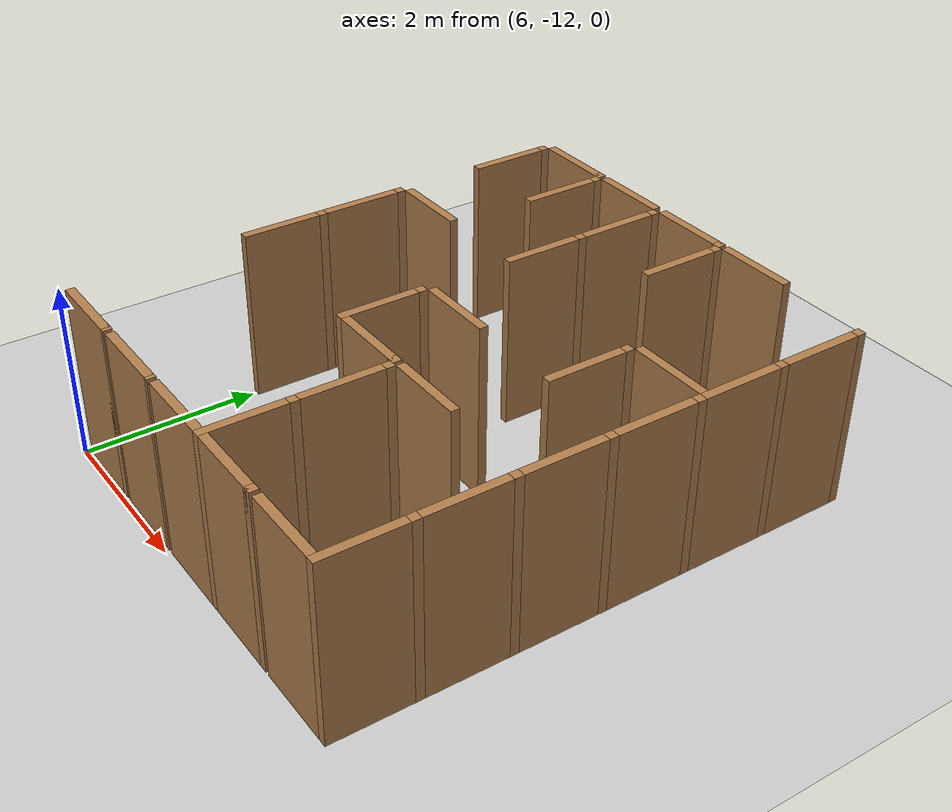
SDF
<sdf version="1.6">
 <world name="default">
  <include><uri>model://sun</uri></include>
  <model name="ground_plane">
   <static>true</static>
   <link name="link">
    <collision name="collision"><geometry><plane><size>12.0 12.0</size></plane></geometry></collision>
    <visual name="visual">
     <cast_shadows>false</cast_shadows>
     <geometry><plane><size>12.0 12.0</size></plane></geometry>
     <material>
      <script><uri>file://media/materials/scripts/gazebo.material</uri><name>Gazebo/Grey</name></script>
     </material>
    </visual>
   </link>
   <pose>6.0 -6.0 0 0 0 0</pose>
  </model>
  <model name="vwall_6_6">
   <pose>6.0 -6.5 1.0 0 0 0</pose>
   <link name="link">
    <collision name="collision"><geometry><box><size>0.1 0.9 2</size></box></geometry></collision>
    <visual name="visual">
     <geometry><box><size>0.1 0.9 2</size></box></geometry>
     <material>
      <script><uri>file://media/materials/scripts/gazebo.material</uri><name>Gazebo/Wood</name></script>
     </material>
    </visual>
   </link>
  </model>
  <model name="joint_6.0_-6.0">
   <pose>6.0 -6.0 1.0 0 0 0</pose>
   <link name="link">
    <collision name="collision"><geometry><box><size>0.1 0.1 2</size></box></geometry></collision>
    <visual name="visual">
     <geometry><box><size>0.1 0.1 2</size></box></geometry>
     <material>
      <script><uri>file://media/materials/scripts/gazebo.material</uri><name>Gazebo/Wood</name></script>
     </material>
    </visual>
   </link>
  </model>
  <model name="vwall_6_7">
   <pose>7.0 -6.5 1.0 0 0 0</pose>
   <link name="link">
    <collision name="collision"><geometry><box><size>0.1 0.9 2</size></box></geometry></collision>
    <visual name="visual">
     <geometry><box><size>0.1 0.9 2</size></box></geometry>
     <material>
      <script><uri>file://media/materials/scripts/gazebo.material</uri><name>Gazebo/Wood</name></script>
     </material>
    </visual>
   </link>
  </model>
  <model name="joint_7.0_-6.0">
   <pose>7.0 -6.0 1.0 0 0 0</pose>
   <link name="link">
    <collision name="collision"><geometry><box><size>0.1 0.1 2</size></box></geometry></collision>
    <visual name="visual">
     <geometry><box><size>0.1 0.1 2</size></box></geometry>
     <material>
      <script><uri>file://media/materials/scripts/gazebo.material</uri><name>Gazebo/Wood</name></script>
     </material>
    </visual>
   </link>
  </model>
  <model name="vwall_6_8">
   <pose>8.0 -6.5 1.0 0 0 0</pose>
   <link name="link">
    <collision name="collision"><geometry><box><size>0.1 0.9 2</size></box></geometry></collision>
    <visual name="visual">
     <geometry><box><size>0.1 0.9 2</size></box></geometry>
     <material>
      <script><uri>file://media/materials/scripts/gazebo.material</uri><name>Gazebo/Wood</name></script>
     </material>
    </visual>
   </link>
  </model>
  <model name="joint_8.0_-6.0">
   <pose>8.0 -6.0 1.0 0 0 0</pose>
   <link name="link">
    <collision name="collision"><geometry><box><size>0.1 0.1 2</size></box></geometry></collision>
    <visual name="visual">
     <geometry><box><size>0.1 0.1 2</size></box></geometry>
     <material>
      <script><uri>file://media/materials/scripts/gazebo.material</uri><name>Gazebo/Wood</name></script>
     </material>
    </visual>
   </link>
  </model>
  <model name="vwall_6_9">
   <pose>9.0 -6.5 1.0 0 0 0</pose>
   <link name="link">
    <collision name="collision"><geometry><box><size>0.1 0.9 2</size></box></geometry></collision>
    <visual name="visual">
     <geometry><box><size>0.1 0.9 2</size></box></geometry>
     <material>
      <script><uri>file://media/materials/scripts/gazebo.material</uri><name>Gazebo/Wood</name></script>
     </material>
    </visual>
   </link>
  </model>
  <model name="joint_9.0_-6.0">
   <pose>9.0 -6.0 1.0 0 0 0</pose>
   <link name="link">
    <collision name="collision"><geometry><box><size>0.1 0.1 2</size></box></geometry></collision>
    <visual name="visual">
     <geometry><box><size>0.1 0.1 2</size></box></geometry>
     <material>
      <script><uri>file://media/materials/scripts/gazebo.material</uri><name>Gazebo/Wood</name></script>
     </material>
    </visual>
   </link>
  </model>
  <model name="vwall_6_11">
   <pose>11.0 -6.5 1.0 0 0 0</pose>
   <link name="link">
    <collision name="collision"><geometry><box><size>0.1 0.9 2</size></box></geometry></collision>
    <visual name="visual">
     <geometry><box><size>0.1 0.9 2</size></box></geometry>
     <material>
      <script><uri>file://media/materials/scripts/gazebo.material</uri><name>Gazebo/Wood</name></script>
     </material>
    </visual>
   </link>
  </model>
  <model name="joint_11.0_-6.0">
   <pose>11.0 -6.0 1.0 0 0 0</pose>
   <link name="link">
    <collision name="collision"><geometry><box><size>0.1 0.1 2</size></box></geometry></collision>
    <visual name="visual">
     <geometry><box><size>0.1 0.1 2</size></box></geometry>
     <material>
      <script><uri>file://media/materials/scripts/gazebo.material</uri><name>Gazebo/Wood</name></script>
     </material>
    </visual>
   </link>
  </model>
  <model name="vwall_7_8">
   <pose>8.0 -7.5 1.0 0 0 0</pose>
   <link name="link">
    <collision name="collision"><geometry><box><size>0.1 0.9 2</size></box></geometry></collision>
    <visual name="visual">
     <geometry><box><size>0.1 0.9 2</size></box></geometry>
     <material>
      <script><uri>file://media/materials/scripts/gazebo.material</uri><name>Gazebo/Wood</name></script>
     </material>
    </visual>
   </link>
  </model>
  <model name="joint_8.0_-7.0">
   <pose>8.0 -7.0 1.0 0 0 0</pose>
   <link name="link">
    <collision name="collision"><geometry><box><size>0.1 0.1 2</size></box></geometry></collision>
    <visual name="visual">
     <geometry><box><size>0.1 0.1 2</size></box></geometry>
     <material>
      <script><uri>file://media/materials/scripts/gazebo.material</uri><name>Gazebo/Wood</name></script>
     </material>
    </visual>
   </link>
  </model>
  <model name="vwall_7_11">
   <pose>11.0 -7.5 1.0 0 0 0</pose>
   <link name="link">
    <collision name="collision"><geometry><box><size>0.1 0.9 2</size></box></geometry></collision>
    <visual name="visual">
     <geometry><box><size>0.1 0.9 2</size></box></geometry>
     <material>
      <script><uri>file://media/materials/scripts/gazebo.material</uri><name>Gazebo/Wood</name></script>
     </material>
    </visual>
   </link>
  </model>
  <model name="joint_11.0_-7.0">
   <pose>11.0 -7.0 1.0 0 0 0</pose>
   <link name="link">
    <collision name="collision"><geometry><box><size>0.1 0.1 2</size></box></geometry></collision>
    <visual name="visual">
     <geometry><box><size>0.1 0.1 2</size></box></geometry>
     <material>
      <script><uri>file://media/materials/scripts/gazebo.material</uri><name>Gazebo/Wood</name></script>
     </material>
    </visual>
   </link>
  </model>
  <model name="vwall_8_6">
   <pose>6.0 -8.5 1.0 0 0 0</pose>
   <link name="link">
    <collision name="collision"><geometry><box><size>0.1 0.9 2</size></box></geometry></collision>
    <visual name="visual">
     <geometry><box><size>0.1 0.9 2</size></box></geometry>
     <material>
      <script><uri>file://media/materials/scripts/gazebo.material</uri><name>Gazebo/Wood</name></script>
     </material>
    </visual>
   </link>
  </model>
  <model name="joint_6.0_-8.0">
   <pose>6.0 -8.0 1.0 0 0 0</pose>
   <link name="link">
    <collision name="collision"><geometry><box><size>0.1 0.1 2</size></box></geometry></collision>
    <visual name="visual">
     <geometry><box><size>0.1 0.1 2</size></box></geometry>
     <material>
      <script><uri>file://media/materials/scripts/gazebo.material</uri><name>Gazebo/Wood</name></script>
     </material>
    </visual>
   </link>
  </model>
  <model name="vwall_8_10">
   <pose>10.0 -8.5 1.0 0 0 0</pose>
   <link name="link">
    <collision name="collision"><geometry><box><size>0.1 0.9 2</size></box></geometry></collision>
    <visual name="visual">
     <geometry><box><size>0.1 0.9 2</size></box></geometry>
     <material>
      <script><uri>file://media/materials/scripts/gazebo.material</uri><name>Gazebo/Wood</name></script>
     </material>
    </visual>
   </link>
  </model>
  <model name="joint_10.0_-8.0">
   <pose>10.0 -8.0 1.0 0 0 0</pose>
   <link name="link">
    <collision name="collision"><geometry><box><size>0.1 0.1 2</size></box></geometry></collision>
    <visual name="visual">
     <geometry><box><size>0.1 0.1 2</size></box></geometry>
     <material>
      <script><uri>file://media/materials/scripts/gazebo.material</uri><name>Gazebo/Wood</name></script>
     </material>
    </visual>
   </link>
  </model>
  <model name="vwall_8_11">
   <pose>11.0 -8.5 1.0 0 0 0</pose>
   <link name="link">
    <collision name="collision"><geometry><box><size>0.1 0.9 2</size></box></geometry></collision>
    <visual name="visual">
     <geometry><box><size>0.1 0.9 2</size></box></geometry>
     <material>
      <script><uri>file://media/materials/scripts/gazebo.material</uri><name>Gazebo/Wood</name></script>
     </material>
    </visual>
   </link>
  </model>
  <model name="joint_11.0_-8.0">
   <pose>11.0 -8.0 1.0 0 0 0</pose>
   <link name="link">
    <collision name="collision"><geometry><box><size>0.1 0.1 2</size></box></geometry></collision>
    <visual name="visual">
     <geometry><box><size>0.1 0.1 2</size></box></geometry>
     <material>
      <script><uri>file://media/materials/scripts/gazebo.material</uri><name>Gazebo/Wood</name></script>
     </material>
    </visual>
   </link>
  </model>
  <model name="vwall_9_6">
   <pose>6.0 -9.5 1.0 0 0 0</pose>
   <link name="link">
    <collision name="collision"><geometry><box><size>0.1 0.9 2</size></box></geometry></collision>
    <visual name="visual">
     <geometry><box><size>0.1 0.9 2</size></box></geometry>
     <material>
      <script><uri>file://media/materials/scripts/gazebo.material</uri><name>Gazebo/Wood</name></script>
     </material>
    </visual>
   </link>
  </model>
  <model name="joint_6.0_-9.0">
   <pose>6.0 -9.0 1.0 0 0 0</pose>
   <link name="link">
    <collision name="collision"><geometry><box><size>0.1 0.1 2</size></box></geometry></collision>
    <visual name="visual">
     <geometry><box><size>0.1 0.1 2</size></box></geometry>
     <material>
      <script><uri>file://media/materials/scripts/gazebo.material</uri><name>Gazebo/Wood</name></script>
     </material>
    </visual>
   </link>
  </model>
  <model name="vwall_9_8">
   <pose>8.0 -9.5 1.0 0 0 0</pose>
   <link name="link">
    <collision name="collision"><geometry><box><size>0.1 0.9 2</size></box></geometry></collision>
    <visual name="visual">
     <geometry><box><size>0.1 0.9 2</size></box></geometry>
     <material>
      <script><uri>file://media/materials/scripts/gazebo.material</uri><name>Gazebo/Wood</name></script>
     </material>
    </visual>
   </link>
  </model>
  <model name="joint_8.0_-9.0">
   <pose>8.0 -9.0 1.0 0 0 0</pose>
   <link name="link">
    <collision name="collision"><geometry><box><size>0.1 0.1 2</size></box></geometry></collision>
    <visual name="visual">
     <geometry><box><size>0.1 0.1 2</size></box></geometry>
     <material>
      <script><uri>file://media/materials/scripts/gazebo.material</uri><name>Gazebo/Wood</name></script>
     </material>
    </visual>
   </link>
  </model>
  <model name="vwall_9_11">
   <pose>11.0 -9.5 1.0 0 0 0</pose>
   <link name="link">
    <collision name="collision"><geometry><box><size>0.1 0.9 2</size></box></geometry></collision>
    <visual name="visual">
     <geometry><box><size>0.1 0.9 2</size></box></geometry>
     <material>
      <script><uri>file://media/materials/scripts/gazebo.material</uri><name>Gazebo/Wood</name></script>
     </material>
    </visual>
   </link>
  </model>
  <model name="joint_11.0_-9.0">
   <pose>11.0 -9.0 1.0 0 0 0</pose>
   <link name="link">
    <collision name="collision"><geometry><box><size>0.1 0.1 2</size></box></geometry></collision>
    <visual name="visual">
     <geometry><box><size>0.1 0.1 2</size></box></geometry>
     <material>
      <script><uri>file://media/materials/scripts/gazebo.material</uri><name>Gazebo/Wood</name></script>
     </material>
    </visual>
   </link>
  </model>
  <model name="vwall_10_9">
   <pose>9.0 -10.5 1.0 0 0 0</pose>
   <link name="link">
    <collision name="collision"><geometry><box><size>0.1 0.9 2</size></box></geometry></collision>
    <visual name="visual">
     <geometry><box><size>0.1 0.9 2</size></box></geometry>
     <material>
      <script><uri>file://media/materials/scripts/gazebo.material</uri><name>Gazebo/Wood</name></script>
     </material>
    </visual>
   </link>
  </model>
  <model name="joint_9.0_-10.0">
   <pose>9.0 -10.0 1.0 0 0 0</pose>
   <link name="link">
    <collision name="collision"><geometry><box><size>0.1 0.1 2</size></box></geometry></collision>
    <visual name="visual">
     <geometry><box><size>0.1 0.1 2</size></box></geometry>
     <material>
      <script><uri>file://media/materials/scripts/gazebo.material</uri><name>Gazebo/Wood</name></script>
     </material>
    </visual>
   </link>
  </model>
  <model name="vwall_10_11">
   <pose>11.0 -10.5 1.0 0 0 0</pose>
   <link name="link">
    <collision name="collision"><geometry><box><size>0.1 0.9 2</size></box></geometry></collision>
    <visual name="visual">
     <geometry><box><size>0.1 0.9 2</size></box></geometry>
     <material>
      <script><uri>file://media/materials/scripts/gazebo.material</uri><name>Gazebo/Wood</name></script>
     </material>
    </visual>
   </link>
  </model>
  <model name="joint_11.0_-10.0">
   <pose>11.0 -10.0 1.0 0 0 0</pose>
   <link name="link">
    <collision name="collision"><geometry><box><size>0.1 0.1 2</size></box></geometry></collision>
    <visual name="visual">
     <geometry><box><size>0.1 0.1 2</size></box></geometry>
     <material>
      <script><uri>file://media/materials/scripts/gazebo.material</uri><name>Gazebo/Wood</name></script>
     </material>
    </visual>
   </link>
  </model>
  <model name="vwall_11_9">
   <pose>9.0 -11.5 1.0 0 0 0</pose>
   <link name="link">
    <collision name="collision"><geometry><box><size>0.1 0.9 2</size></box></geometry></collision>
    <visual name="visual">
     <geometry><box><size>0.1 0.9 2</size></box></geometry>
     <material>
      <script><uri>file://media/materials/scripts/gazebo.material</uri><name>Gazebo/Wood</name></script>
     </material>
    </visual>
   </link>
  </model>
  <model name="joint_9.0_-11.0">
   <pose>9.0 -11.0 1.0 0 0 0</pose>
   <link name="link">
    <collision name="collision"><geometry><box><size>0.1 0.1 2</size></box></geometry></collision>
    <visual name="visual">
     <geometry><box><size>0.1 0.1 2</size></box></geometry>
     <material>
      <script><uri>file://media/materials/scripts/gazebo.material</uri><name>Gazebo/Wood</name></script>
     </material>
    </visual>
   </link>
  </model>
  <model name="vwall_11_11">
   <pose>11.0 -11.5 1.0 0 0 0</pose>
   <link name="link">
    <collision name="collision"><geometry><box><size>0.1 0.9 2</size></box></geometry></collision>
    <visual name="visual">
     <geometry><box><size>0.1 0.9 2</size></box></geometry>
     <material>
      <script><uri>file://media/materials/scripts/gazebo.material</uri><name>Gazebo/Wood</name></script>
     </material>
    </visual>
   </link>
  </model>
  <model name="joint_11.0_-11.0">
   <pose>11.0 -11.0 1.0 0 0 0</pose>
   <link name="link">
    <collision name="collision"><geometry><box><size>0.1 0.1 2</size></box></geometry></collision>
    <visual name="visual">
     <geometry><box><size>0.1 0.1 2</size></box></geometry>
     <material>
      <script><uri>file://media/materials/scripts/gazebo.material</uri><name>Gazebo/Wood</name></script>
     </material>
    </visual>
   </link>
  </model>
  <model name="hwall_5_6">
   <pose>6.5 -5.9 1.0 0 0 0</pose>
   <link name="link">
    <collision name="collision"><geometry><box><size>0.9 0.1 2</size></box></geometry></collision>
    <visual name="visual">
     <geometry><box><size>0.9 0.1 2</size></box></geometry>
     <material>
      <script><uri>file://media/materials/scripts/gazebo.material</uri><name>Gazebo/Wood</name></script>
     </material>
    </visual>
   </link>
  </model>
  <model name="joint_6.95_-5.9">
   <pose>6.95 -5.9 1.0 0 0 0</pose>
   <link name="link">
    <collision name="collision"><geometry><box><size>0.1 0.1 2</size></box></geometry></collision>
    <visual name="visual">
     <geometry><box><size>0.1 0.1 2</size></box></geometry>
     <material>
      <script><uri>file://media/materials/scripts/gazebo.material</uri><name>Gazebo/Wood</name></script>
     </material>
    </visual>
   </link>
  </model>
  <model name="hwall_5_7">
   <pose>7.5 -5.9 1.0 0 0 0</pose>
   <link name="link">
    <collision name="collision"><geometry><box><size>0.9 0.1 2</size></box></geometry></collision>
    <visual name="visual">
     <geometry><box><size>0.9 0.1 2</size></box></geometry>
     <material>
      <script><uri>file://media/materials/scripts/gazebo.material</uri><name>Gazebo/Wood</name></script>
     </material>
    </visual>
   </link>
  </model>
  <model name="hwall_5_8">
   <pose>8.5 -5.9 1.0 0 0 0</pose>
   <link name="link">
    <collision name="collision"><geometry><box><size>0.9 0.1 2</size></box></geometry></collision>
    <visual name="visual">
     <geometry><box><size>0.9 0.1 2</size></box></geometry>
     <material>
      <script><uri>file://media/materials/scripts/gazebo.material</uri><name>Gazebo/Wood</name></script>
     </material>
    </visual>
   </link>
  </model>
  <model name="joint_8.95_-5.9">
   <pose>8.95 -5.9 1.0 0 0 0</pose>
   <link name="link">
    <collision name="collision"><geometry><box><size>0.1 0.1 2</size></box></geometry></collision>
    <visual name="visual">
     <geometry><box><size>0.1 0.1 2</size></box></geometry>
     <material>
      <script><uri>file://media/materials/scripts/gazebo.material</uri><name>Gazebo/Wood</name></script>
     </material>
    </visual>
   </link>
  </model>
  <model name="hwall_5_9">
   <pose>9.5 -5.9 1.0 0 0 0</pose>
   <link name="link">
    <collision name="collision"><geometry><box><size>0.9 0.1 2</size></box></geometry></collision>
    <visual name="visual">
     <geometry><box><size>0.9 0.1 2</size></box></geometry>
     <material>
      <script><uri>file://media/materials/scripts/gazebo.material</uri><name>Gazebo/Wood</name></script>
     </material>
    </visual>
   </link>
  </model>
  <model name="hwall_7_6">
   <pose>6.5 -7.9 1.0 0 0 0</pose>
   <link name="link">
    <collision name="collision"><geometry><box><size>0.9 0.1 2</size></box></geometry></collision>
    <visual name="visual">
     <geometry><box><size>0.9 0.1 2</size></box></geometry>
     <material>
      <script><uri>file://media/materials/scripts/gazebo.material</uri><name>Gazebo/Wood</name></script>
     </material>
    </visual>
   </link>
  </model>
  <model name="hwall_7_10">
   <pose>10.5 -7.9 1.0 0 0 0</pose>
   <link name="link">
    <collision name="collision"><geometry><box><size>0.9 0.1 2</size></box></geometry></collision>
    <visual name="visual">
     <geometry><box><size>0.9 0.1 2</size></box></geometry>
     <material>
      <script><uri>file://media/materials/scripts/gazebo.material</uri><name>Gazebo/Wood</name></script>
     </material>
    </visual>
   </link>
  </model>
  <model name="hwall_8_8">
   <pose>8.5 -8.9 1.0 0 0 0</pose>
   <link name="link">
    <collision name="collision"><geometry><box><size>0.9 0.1 2</size></box></geometry></collision>
    <visual name="visual">
     <geometry><box><size>0.9 0.1 2</size></box></geometry>
     <material>
      <script><uri>file://media/materials/scripts/gazebo.material</uri><name>Gazebo/Wood</name></script>
     </material>
    </visual>
   </link>
  </model>
  <model name="hwall_9_8">
   <pose>8.5 -9.9 1.0 0 0 0</pose>
   <link name="link">
    <collision name="collision"><geometry><box><size>0.9 0.1 2</size></box></geometry></collision>
    <visual name="visual">
     <geometry><box><size>0.9 0.1 2</size></box></geometry>
     <material>
      <script><uri>file://media/materials/scripts/gazebo.material</uri><name>Gazebo/Wood</name></script>
     </material>
    </visual>
   </link>
  </model>
  <model name="joint_8.95_-9.9">
   <pose>8.95 -9.9 1.0 0 0 0</pose>
   <link name="link">
    <collision name="collision"><geometry><box><size>0.1 0.1 2</size></box></geometry></collision>
    <visual name="visual">
     <geometry><box><size>0.1 0.1 2</size></box></geometry>
     <material>
      <script><uri>file://media/materials/scripts/gazebo.material</uri><name>Gazebo/Wood</name></script>
     </material>
    </visual>
   </link>
  </model>
  <model name="hwall_9_9">
   <pose>9.5 -9.9 1.0 0 0 0</pose>
   <link name="link">
    <collision name="collision"><geometry><box><size>0.9 0.1 2</size></box></geometry></collision>
    <visual name="visual">
     <geometry><box><size>0.9 0.1 2</size></box></geometry>
     <material>
      <script><uri>file://media/materials/scripts/gazebo.material</uri><name>Gazebo/Wood</name></script>
     </material>
    </visual>
   </link>
  </model>
  <model name="hwall_11_6">
   <pose>6.5 -11.9 1.0 0 0 0</pose>
   <link name="link">
    <collision name="collision"><geometry><box><size>0.9 0.1 2</size></box></geometry></collision>
    <visual name="visual">
     <geometry><box><size>0.9 0.1 2</size></box></geometry>
     <material>
      <script><uri>file://media/materials/scripts/gazebo.material</uri><name>Gazebo/Wood</name></script>
     </material>
    </visual>
   </link>
  </model>
  <model name="joint_6.95_-11.9">
   <pose>6.95 -11.9 1.0 0 0 0</pose>
   <link name="link">
    <collision name="collision"><geometry><box><size>0.1 0.1 2</size></box></geometry></collision>
    <visual name="visual">
     <geometry><box><size>0.1 0.1 2</size></box></geometry>
     <material>
      <script><uri>file://media/materials/scripts/gazebo.material</uri><name>Gazebo/Wood</name></script>
     </material>
    </visual>
   </link>
  </model>
  <model name="hwall_11_7">
   <pose>7.5 -11.9 1.0 0 0 0</pose>
   <link name="link">
    <collision name="collision"><geometry><box><size>0.9 0.1 2</size></box></geometry></collision>
    <visual name="visual">
     <geometry><box><size>0.9 0.1 2</size></box></geometry>
     <material>
      <script><uri>file://media/materials/scripts/gazebo.material</uri><name>Gazebo/Wood</name></script>
     </material>
    </visual>
   </link>
  </model>
  <model name="joint_7.95_-11.9">
   <pose>7.95 -11.9 1.0 0 0 0</pose>
   <link name="link">
    <collision name="collision"><geometry><box><size>0.1 0.1 2</size></box></geometry></collision>
    <visual name="visual">
     <geometry><box><size>0.1 0.1 2</size></box></geometry>
     <material>
      <script><uri>file://media/materials/scripts/gazebo.material</uri><name>Gazebo/Wood</name></script>
     </material>
    </visual>
   </link>
  </model>
  <model name="hwall_11_8">
   <pose>8.5 -11.9 1.0 0 0 0</pose>
   <link name="link">
    <collision name="collision"><geometry><box><size>0.9 0.1 2</size></box></geometry></collision>
    <visual name="visual">
     <geometry><box><size>0.9 0.1 2</size></box></geometry>
     <material>
      <script><uri>file://media/materials/scripts/gazebo.material</uri><name>Gazebo/Wood</name></script>
     </material>
    </visual>
   </link>
  </model>
  <model name="hwall_11_9">
   <pose>9.5 -11.9 1.0 0 0 0</pose>
   <link name="link">
    <collision name="collision"><geometry><box><size>0.9 0.1 2</size></box></geometry></collision>
    <visual name="visual">
     <geometry><box><size>0.9 0.1 2</size></box></geometry>
     <material>
      <script><uri>file://media/materials/scripts/gazebo.material</uri><name>Gazebo/Wood</name></script>
     </material>
    </visual>
   </link>
  </model>
  <model name="joint_9.95_-11.9">
   <pose>9.95 -11.9 1.0 0 0 0</pose>
   <link name="link">
    <collision name="collision"><geometry><box><size>0.1 0.1 2</size></box></geometry></collision>
    <visual name="visual">
     <geometry><box><size>0.1 0.1 2</size></box></geometry>
     <material>
      <script><uri>file://media/materials/scripts/gazebo.material</uri><name>Gazebo/Wood</name></script>
     </material>
    </visual>
   </link>
  </model>
  <model name="hwall_11_10">
   <pose>10.5 -11.9 1.0 0 0 0</pose>
   <link name="link">
    <collision name="collision"><geometry><box><size>0.9 0.1 2</size></box></geometry></collision>
    <visual name="visual">
     <geometry><box><size>0.9 0.1 2</size></box></geometry>
     <material>
      <script><uri>file://media/materials/scripts/gazebo.material</uri><name>Gazebo/Wood</name></script>
     </material>
    </visual>
   </link>
  </model>
 </world>
</sdf>
